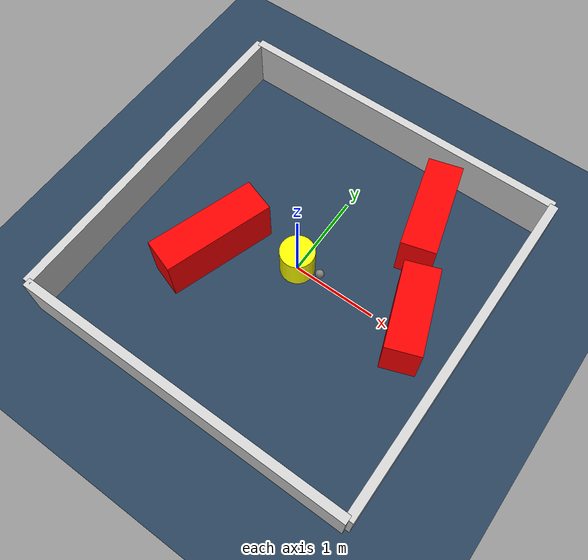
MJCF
<?xml version="1.0" ?>
<mujoco model="generated_environment">
  <option timestep="0.01" integrator="RK4" cone="elliptic"/>
  <default>
    <geom density="1"/>
  </default>
  <asset>
    <texture builtin="gradient" height="3072" rgb1="0.3 0.5 0.7" rgb2="0 0 0" type="skybox" width="512"/>
    <texture builtin="checker" height="300" mark="edge" markrgb="0.8 0.8 0.8" name="groundplane" rgb1="0.2 0.3 0.4" rgb2="0.1 0.2 0.3" type="2d" width="300"/>
    <material name="groundplane" reflectance="0.2" texrepeat="5 5" texture="groundplane" texuniform="true"/>
    <material name="robot" rgba="0.0 1.0 0.0 1"/>
  </asset>
  <worldbody>
    <light dir="0 0 -1" directional="true" pos="0 0 1.5"/>
    <geom condim="4" friction="1.0 0.005 0.001" material="groundplane" name="floor" size="0 0 0.05" type="plane"/>
    <body name="walls">
      <geom name="wall_1" condim="4" pos="-2.0 0.0 0.3" rgba="0.800000011920929 0.800000011920929 0.800000011920929 1.0" size="0.05 2.0 0.3" type="box"/>
      <geom name="wall_2" condim="4" pos="2.0 0.0 0.3" rgba="0.800000011920929 0.800000011920929 0.800000011920929 1.0" size="0.05 2.0 0.3" type="box"/>
      <geom name="wall_3" condim="4" pos="0.0 -2.0 0.3" rgba="0.800000011920929 0.800000011920929 0.800000011920929 1.0" size="2.0 0.05 0.3" type="box"/>
      <geom name="wall_4" condim="4" pos="0.0 2.0 0.3" rgba="0.800000011920929 0.800000011920929 0.800000011920929 1.0" size="2.0 0.05 0.3" type="box"/>
    </body>
    <body name="robot">
      <joint name="joint_x" type="slide" pos="0 0 0" axis="1 0 0"/>
      <joint name="joint_y" type="slide" pos="0 0 0" axis="0 1 0"/>
      <geom name="robot" type="sphere" pos="0.3 0.0 0.2" size="0.05" mass="5." friction="1.0 0.005 0.0001" condim="4" rgba="0.5 0.5 0.5 1.0"/>
      <site name="sensor_ball"/>
    </body>
    <body name="obstacle_movable_1">
      <geom name="obstacle_movable_1" condim="4" pos="0.0 0.0 0.2" euler="0 0 0.0" friction="1.0 0.005 0.001" rgba="1.0 1.0 0.0 1.0" size="0.2 0.2 0.0" type="cylinder" mass="0.1"/>
      <joint type="free"/>
    </body>
    <body name="obstacle_2_static">
      <geom name="obstacle_2_static" condim="4" pos="0.9192159400363438 1.2406887348390792 0.3" euler="0 0 285.64869882768687" friction="1.0 0.005 0.001" rgba="1 0 0 1" size="0.5704404094262969 0.2 0.3" type="box"/>
    </body>
    <body name="obstacle_3_static">
      <geom name="obstacle_3_static" condim="4" pos="-0.8909920778568245 -0.3731093740950704 0.3" euler="0 0 71.74886231803914" friction="1.0 0.005 0.001" rgba="1 0 0 1" size="0.6464659730979654 0.2 0.3" type="box"/>
    </body>
    <body name="obstacle_4_static">
      <geom name="obstacle_4_static" condim="4" pos="1.3860463793362823 0.08600582722627426 0.3" euler="0 0 290.00021386686655" friction="1.0 0.005 0.001" rgba="1 0 0 1" size="0.5015820513685426 0.2 0.3" type="box"/>
    </body>
  </worldbody>
  <actuator>
    <motor name="actuator_x" joint="joint_x" gear="1" ctrlrange="-1 1"/>
    <motor name="actuator_y" joint="joint_y" gear="1" ctrlrange="-1 1"/>
  </actuator>
</mujoco>
